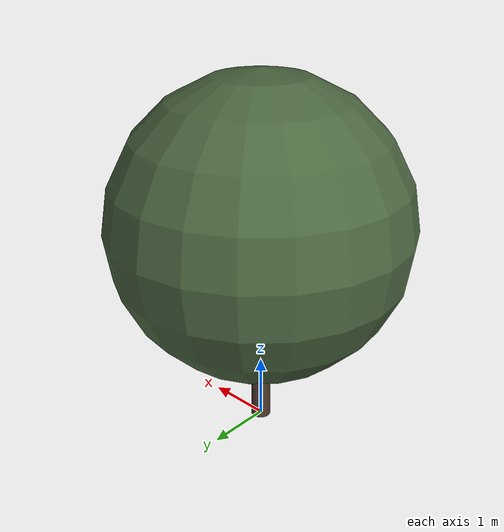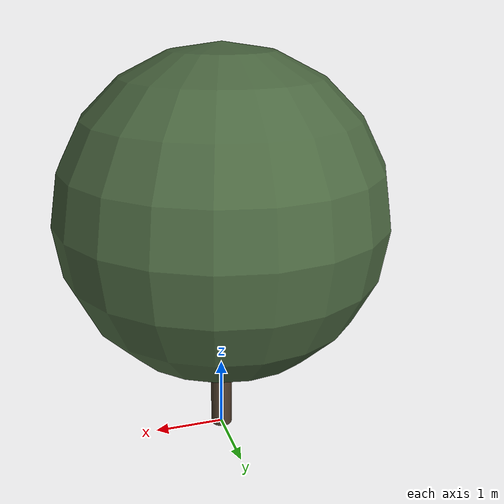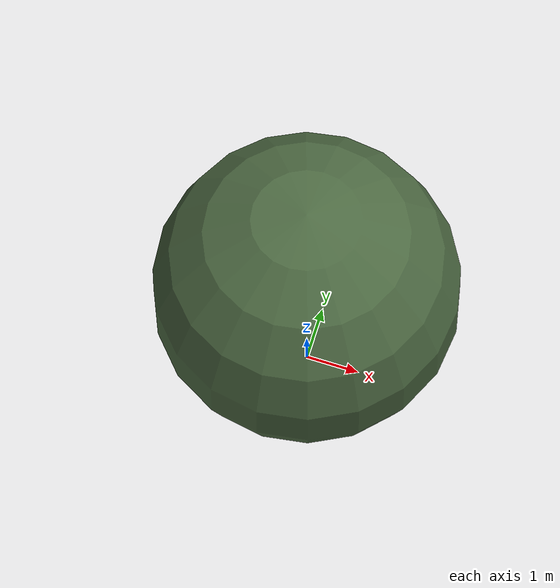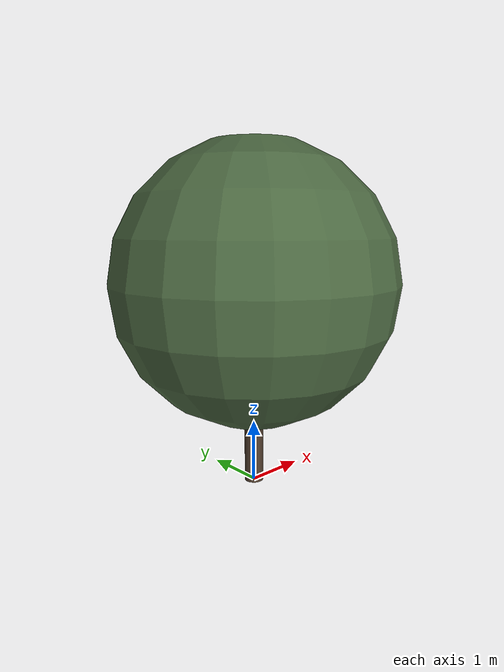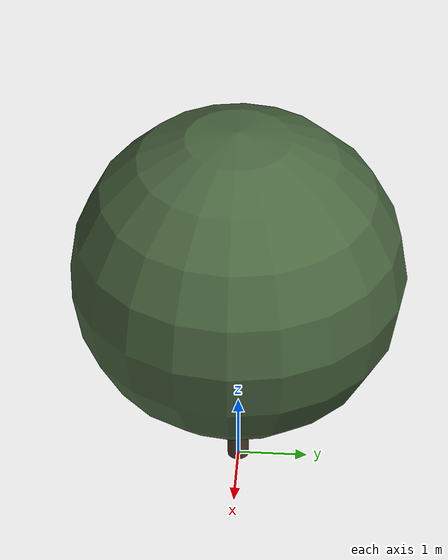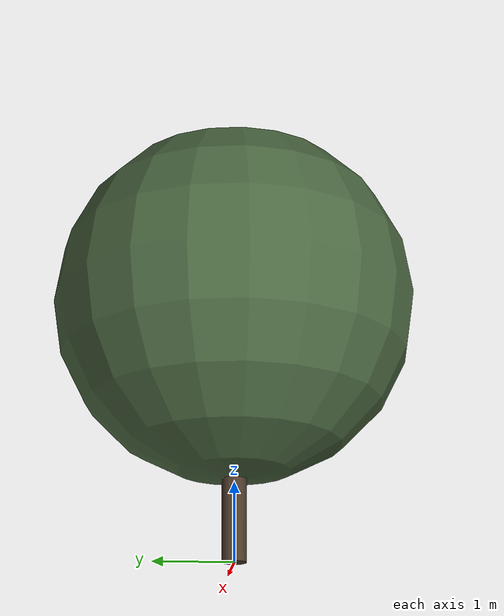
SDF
<?xml version="1.0" ?>
<sdf version="1.10">
  <model name="chene_vert_22">
    <static>true</static>

    <!-- Tronc -->
    <link name="trunk">
      <pose>0 0 1.31228784563528 0 0 0</pose>
      <visual name="trunk_visual">
        <geometry>
          <cylinder>
            <radius>0.1528848925381342</radius>
            <length>2.62457569127056</length>
          </cylinder>
        </geometry>
        <material>
          <ambient>0.29 0.22 0.16 1</ambient>
          <diffuse>0.29 0.22 0.16 1</diffuse>
          <specular>0.1 0.1 0.1 1</specular>
        </material>
      </visual>
      <collision name="trunk_collision">
        <geometry>
          <cylinder>
            <radius>0.1528848925381342</radius>
            <length>2.62457569127056</length>
          </cylinder>
        </geometry>
      </collision>
    </link>

    <!-- Feuillage -->
    <link name="crown">
      <pose>0 0 3.316814024776997 0 0 0</pose>
      <visual name="crown_visual">
        <geometry>
          <sphere>
              <radius>2.3074611116881227</radius>
            </sphere>
        </geometry>
        <material>
          <ambient>0.29 0.40 0.25 1</ambient>
          <diffuse>0.29 0.40 0.25 1</diffuse>
          <specular>0.1 0.1 0.1 1</specular>
        </material>
      </visual>
      <collision name="crown_collision">
        <geometry>
          <sphere>
            <radius>1.8459688893504982</radius>
          </sphere>
        </geometry>
      </collision>
    </link>

    <!-- Joint tronc-feuillage -->
    <joint name="trunk_crown_joint" type="fixed">
      <parent>trunk</parent>
      <child>crown</child>
    </joint>

  </model>
</sdf>
